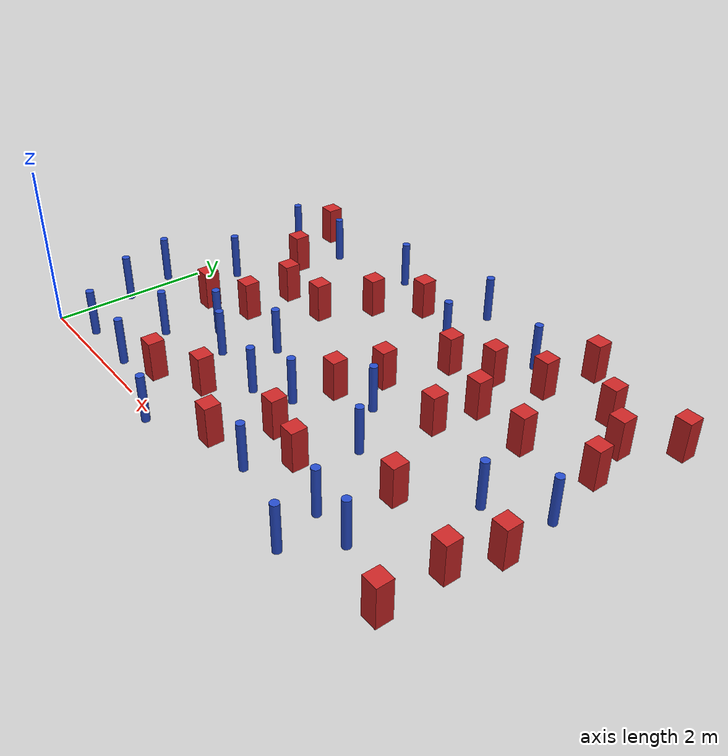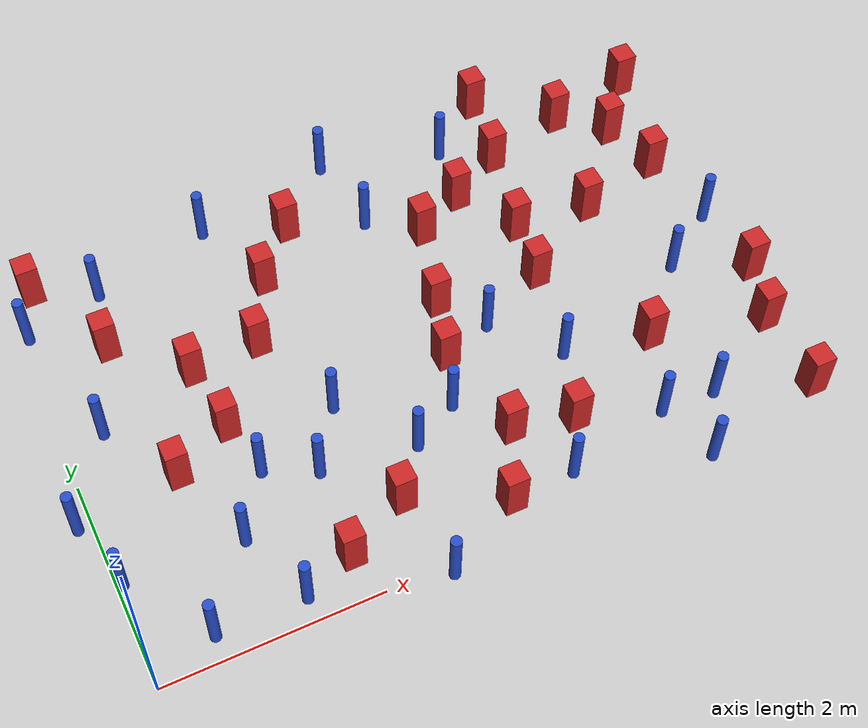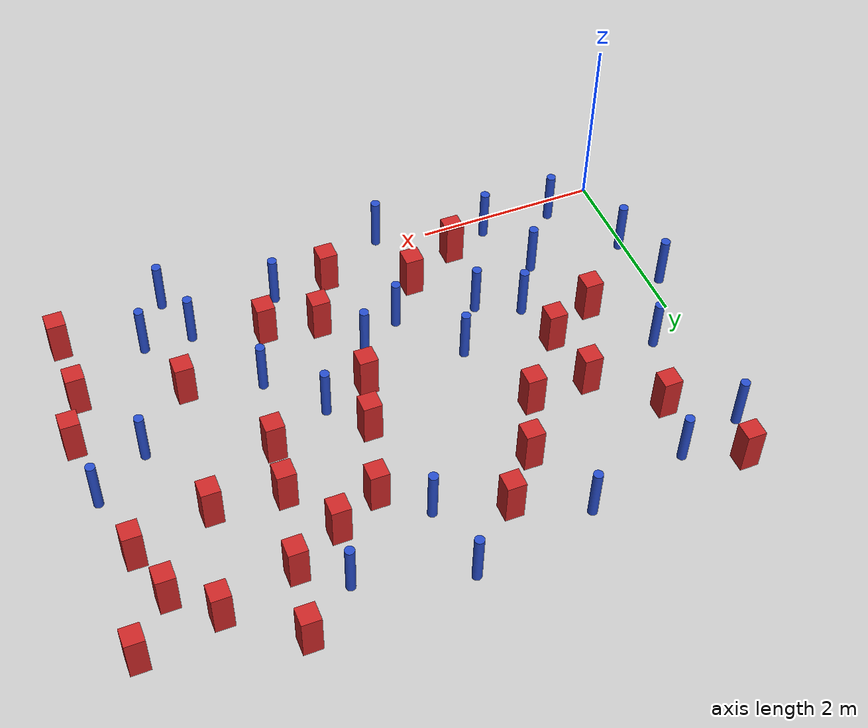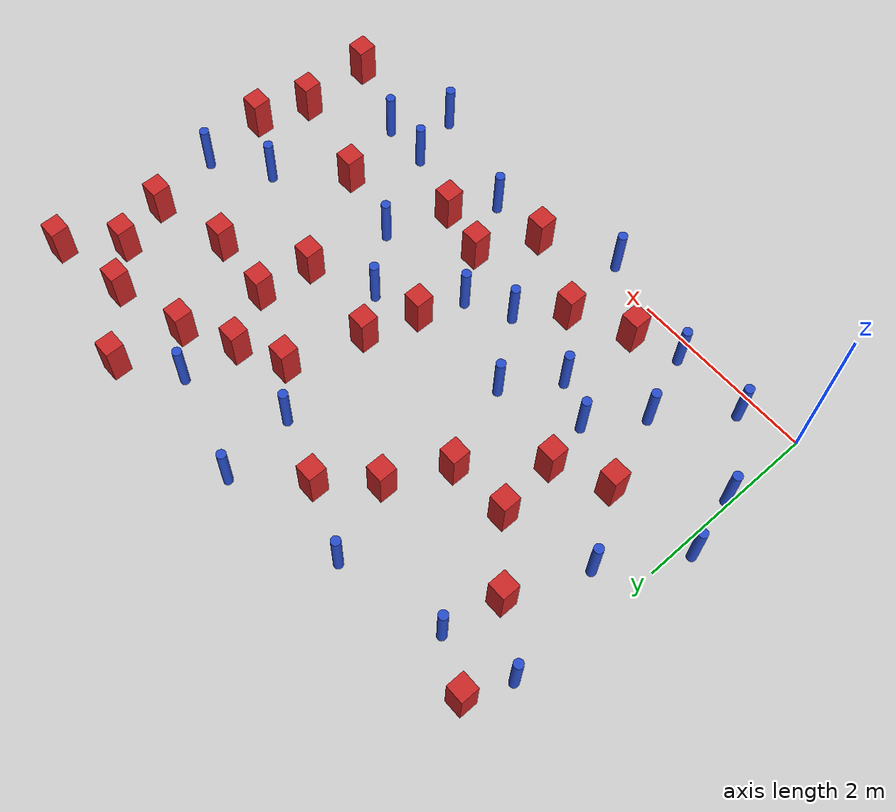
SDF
<sdf version="1.6">
 <model name="dense_54">
  <model name="square_post_obstacle2">
   <static>true</static>
   <pose>3.42907866746 1.85608255959 1.91545236811e-07 -7.35059704564e-06 1.12565212e-07 2.39332434364e-05</pose>
   <link name="link">
    <pose>0 0 0.25 0 -0 0</pose>
    <inertial>
     <mass>100</mass>
     <inertia>
      <ixx>0.166667</ixx>
      <ixy>0</ixy>
      <ixz>0</ixz>
      <iyy>0.166667</iyy>
      <iyz>0</iyz>
      <izz>0.166667</izz>
     </inertia>
    </inertial>
    <collision name="collision"><geometry><box><size>.2 .2 .5</size></box></geometry></collision>
    <visual name="visual">
     <geometry><box><size>.2 .2 .5</size></box></geometry>
     <material>
      <script><name>Gazebo/Red</name><uri>file://media/materials/scripts/gazebo.material</uri></script>
     </material>
    </visual>
   </link>
  </model>
  <model name="pole_obstacle1">
   <static>true</static>
   <pose>1.48350776402 1.47035718474 7.38925637345e-09 -8.471706928e-08 1.24976765079e-08 -1.74513093017e-07</pose>
   <link name="link">
    <pose>0 0 0.3 0 -0 0</pose>
    <inertial>
     <mass>1</mass>
     <inertia><ixx>0.145833</ixx><ixy>0</ixy><ixz>0</ixz><iyy>0.145833</iyy><iyz>0</iyz><izz>0.125</izz></inertia>
    </inertial>
    <collision name="collision">
     <geometry><cylinder><radius>0.05</radius><length>.6</length></cylinder></geometry>
    </collision>
    <visual name="visual">
     <geometry><cylinder><radius>0.05</radius><length>.6</length></cylinder></geometry>
     <material>
      <script><name>Gazebo/Blue</name><uri>file://media/materials/scripts/gazebo.material</uri></script>
     </material>
    </visual>
   </link>
  </model>
  <model name="square_post_obstacle3">
   <static>true</static>
   <pose>3.30021493687 0.299328565392 1.91545236811e-07 -7.35059704564e-06 1.12565212e-07 2.39332434364e-05</pose>
   <link name="link">
    <pose>0 0 0.25 0 -0 0</pose>
    <inertial>
     <mass>100</mass>
     <inertia>
      <ixx>0.166667</ixx>
      <ixy>0</ixy>
      <ixz>0</ixz>
      <iyy>0.166667</iyy>
      <iyz>0</iyz>
      <izz>0.166667</izz>
     </inertia>
    </inertial>
    <collision name="collision"><geometry><box><size>.2 .2 .5</size></box></geometry></collision>
    <visual name="visual">
     <geometry><box><size>.2 .2 .5</size></box></geometry>
     <material>
      <script><name>Gazebo/Red</name><uri>file://media/materials/scripts/gazebo.material</uri></script>
     </material>
    </visual>
   </link>
  </model>
  <model name="square_post_obstacle26">
   <static>true</static>
   <pose>6.25587977387 0.218752010429 1.91545236811e-07 -7.35059704564e-06 1.12565212e-07 2.39332434364e-05</pose>
   <link name="link">
    <pose>0 0 0.25 0 -0 0</pose>
    <inertial>
     <mass>100</mass>
     <inertia>
      <ixx>0.166667</ixx>
      <ixy>0</ixy>
      <ixz>0</ixz>
      <iyy>0.166667</iyy>
      <iyz>0</iyz>
      <izz>0.166667</izz>
     </inertia>
    </inertial>
    <collision name="collision"><geometry><box><size>.2 .2 .5</size></box></geometry></collision>
    <visual name="visual">
     <geometry><box><size>.2 .2 .5</size></box></geometry>
     <material>
      <script><name>Gazebo/Red</name><uri>file://media/materials/scripts/gazebo.material</uri></script>
     </material>
    </visual>
   </link>
  </model>
  <model name="square_post_obstacle27">
   <static>true</static>
   <pose>4.17155937596 0.791975838334 1.91545236811e-07 -7.35059704564e-06 1.12565212e-07 2.39332434364e-05</pose>
   <link name="link">
    <pose>0 0 0.25 0 -0 0</pose>
    <inertial>
     <mass>100</mass>
     <inertia>
      <ixx>0.166667</ixx>
      <ixy>0</ixy>
      <ixz>0</ixz>
      <iyy>0.166667</iyy>
      <iyz>0</iyz>
      <izz>0.166667</izz>
     </inertia>
    </inertial>
    <collision name="collision"><geometry><box><size>.2 .2 .5</size></box></geometry></collision>
    <visual name="visual">
     <geometry><box><size>.2 .2 .5</size></box></geometry>
     <material>
      <script><name>Gazebo/Red</name><uri>file://media/materials/scripts/gazebo.material</uri></script>
     </material>
    </visual>
   </link>
  </model>
  <model name="square_post_obstacle31">
   <static>true</static>
   <pose>2.26156121374 3.33045627502 1.91545236811e-07 -7.35059704564e-06 1.12565212e-07 2.39332434364e-05</pose>
   <link name="link">
    <pose>0 0 0.25 0 -0 0</pose>
    <inertial>
     <mass>100</mass>
     <inertia>
      <ixx>0.166667</ixx>
      <ixy>0</ixy>
      <ixz>0</ixz>
      <iyy>0.166667</iyy>
      <iyz>0</iyz>
      <izz>0.166667</izz>
     </inertia>
    </inertial>
    <collision name="collision"><geometry><box><size>.2 .2 .5</size></box></geometry></collision>
    <visual name="visual">
     <geometry><box><size>.2 .2 .5</size></box></geometry>
     <material>
      <script><name>Gazebo/Red</name><uri>file://media/materials/scripts/gazebo.material</uri></script>
     </material>
    </visual>
   </link>
  </model>
  <model name="pole_obstacle24">
   <static>true</static>
   <pose>2.56661953469 -0.102240468789 7.38925637345e-09 -8.471706928e-08 1.24976765088e-08 -1.74513093017e-07</pose>
   <link name="link">
    <pose>0 0 0.3 0 -0 0</pose>
    <inertial>
     <mass>1</mass>
     <inertia><ixx>0.145833</ixx><ixy>0</ixy><ixz>0</ixz><iyy>0.145833</iyy><iyz>0</iyz><izz>0.125</izz></inertia>
    </inertial>
    <collision name="collision">
     <geometry><cylinder><radius>0.05</radius><length>.6</length></cylinder></geometry>
    </collision>
    <visual name="visual">
     <geometry><cylinder><radius>0.05</radius><length>.6</length></cylinder></geometry>
     <material>
      <script><name>Gazebo/Blue</name><uri>file://media/materials/scripts/gazebo.material</uri></script>
     </material>
    </visual>
   </link>
  </model>
  <model name="pole_obstacle26">
   <static>true</static>
   <pose>0.0470481594055 0.967215717514 7.38925637345e-09 -8.47170692798e-08 1.24976765043e-08 -1.74513093018e-07</pose>
   <link name="link">
    <pose>0 0 0.3 0 -0 0</pose>
    <inertial>
     <mass>1</mass>
     <inertia><ixx>0.145833</ixx><ixy>0</ixy><ixz>0</ixz><iyy>0.145833</iyy><iyz>0</iyz><izz>0.125</izz></inertia>
    </inertial>
    <collision name="collision">
     <geometry><cylinder><radius>0.05</radius><length>.6</length></cylinder></geometry>
    </collision>
    <visual name="visual">
     <geometry><cylinder><radius>0.05</radius><length>.6</length></cylinder></geometry>
     <material>
      <script><name>Gazebo/Blue</name><uri>file://media/materials/scripts/gazebo.material</uri></script>
     </material>
    </visual>
   </link>
  </model>
  <model name="square_post_obstacle34">
   <static>true</static>
   <pose>3.60558968587 2.42284422886 1.91545236811e-07 -7.35059704564e-06 1.12565212e-07 2.39332434364e-05</pose>
   <link name="link">
    <pose>0 0 0.25 0 -0 0</pose>
    <inertial>
     <mass>100</mass>
     <inertia>
      <ixx>0.166667</ixx>
      <ixy>0</ixy>
      <ixz>0</ixz>
      <iyy>0.166667</iyy>
      <iyz>0</iyz>
      <izz>0.166667</izz>
     </inertia>
    </inertial>
    <collision name="collision"><geometry><box><size>.2 .2 .5</size></box></geometry></collision>
    <visual name="visual">
     <geometry><box><size>.2 .2 .5</size></box></geometry>
     <material>
      <script><name>Gazebo/Red</name><uri>file://media/materials/scripts/gazebo.material</uri></script>
     </material>
    </visual>
   </link>
  </model>
  <model name="square_post_obstacle47">
   <static>true</static>
   <pose>5.63885271513 3.95635815245 1.91545236811e-07 -7.35059704564e-06 1.12565212e-07 2.39332434364e-05</pose>
   <link name="link">
    <pose>0 0 0.25 0 -0 0</pose>
    <inertial>
     <mass>100</mass>
     <inertia>
      <ixx>0.166667</ixx>
      <ixy>0</ixy>
      <ixz>0</ixz>
      <iyy>0.166667</iyy>
      <iyz>0</iyz>
      <izz>0.166667</izz>
     </inertia>
    </inertial>
    <collision name="collision"><geometry><box><size>.2 .2 .5</size></box></geometry></collision>
    <visual name="visual">
     <geometry><box><size>.2 .2 .5</size></box></geometry>
     <material>
      <script><name>Gazebo/Red</name><uri>file://media/materials/scripts/gazebo.material</uri></script>
     </material>
    </visual>
   </link>
  </model>
  <model name="square_post_obstacle50">
   <static>true</static>
   <pose>1.30148058443 2.66913933587 1.91545236811e-07 -7.35059704564e-06 1.12565212e-07 2.39332434364e-05</pose>
   <link name="link">
    <pose>0 0 0.25 0 -0 0</pose>
    <inertial>
     <mass>100</mass>
     <inertia>
      <ixx>0.166667</ixx>
      <ixy>0</ixy>
      <ixz>0</ixz>
      <iyy>0.166667</iyy>
      <iyz>0</iyz>
      <izz>0.166667</izz>
     </inertia>
    </inertial>
    <collision name="collision"><geometry><box><size>.2 .2 .5</size></box></geometry></collision>
    <visual name="visual">
     <geometry><box><size>.2 .2 .5</size></box></geometry>
     <material>
      <script><name>Gazebo/Red</name><uri>file://media/materials/scripts/gazebo.material</uri></script>
     </material>
    </visual>
   </link>
  </model>
  <model name="pole_obstacle52">
   <static>true</static>
   <pose>4.42322133173 4.05325340769 7.38925637345e-09 -8.47170692796e-08 1.24976764786e-08 -1.74513093032e-07</pose>
   <link name="link">
    <pose>0 0 0.3 0 -0 0</pose>
    <inertial>
     <mass>1</mass>
     <inertia><ixx>0.145833</ixx><ixy>0</ixy><ixz>0</ixz><iyy>0.145833</iyy><iyz>0</iyz><izz>0.125</izz></inertia>
    </inertial>
    <collision name="collision">
     <geometry><cylinder><radius>0.05</radius><length>.6</length></cylinder></geometry>
    </collision>
    <visual name="visual">
     <geometry><cylinder><radius>0.05</radius><length>.6</length></cylinder></geometry>
     <material>
      <script><name>Gazebo/Blue</name><uri>file://media/materials/scripts/gazebo.material</uri></script>
     </material>
    </visual>
   </link>
  </model>
  <model name="square_post_obstacle59">
   <static>true</static>
   <pose>5.39067442981 2.82921084237 1.91545236811e-07 -7.35059704564e-06 1.12565212e-07 2.39332434364e-05</pose>
   <link name="link">
    <pose>0 0 0.25 0 -0 0</pose>
    <inertial>
     <mass>100</mass>
     <inertia>
      <ixx>0.166667</ixx>
      <ixy>0</ixy>
      <ixz>0</ixz>
      <iyy>0.166667</iyy>
      <iyz>0</iyz>
      <izz>0.166667</izz>
     </inertia>
    </inertial>
    <collision name="collision"><geometry><box><size>.2 .2 .5</size></box></geometry></collision>
    <visual name="visual">
     <geometry><box><size>.2 .2 .5</size></box></geometry>
     <material>
      <script><name>Gazebo/Red</name><uri>file://media/materials/scripts/gazebo.material</uri></script>
     </material>
    </visual>
   </link>
  </model>
  <model name="square_post_obstacle60">
   <static>true</static>
   <pose>0.823319216897 1.73336303704 1.91545236811e-07 -7.35059704564e-06 1.12565212e-07 2.39332434364e-05</pose>
   <link name="link">
    <pose>0 0 0.25 0 -0 0</pose>
    <inertial>
     <mass>100</mass>
     <inertia>
      <ixx>0.166667</ixx>
      <ixy>0</ixy>
      <ixz>0</ixz>
      <iyy>0.166667</iyy>
      <iyz>0</iyz>
      <izz>0.166667</izz>
     </inertia>
    </inertial>
    <collision name="collision"><geometry><box><size>.2 .2 .5</size></box></geometry></collision>
    <visual name="visual">
     <geometry><box><size>.2 .2 .5</size></box></geometry>
     <material>
      <script><name>Gazebo/Red</name><uri>file://media/materials/scripts/gazebo.material</uri></script>
     </material>
    </visual>
   </link>
  </model>
  <model name="square_post_obstacle64">
   <static>true</static>
   <pose>5.1945055967 1.27014534133 1.91545236811e-07 -7.35059704564e-06 1.12565212e-07 2.39332434364e-05</pose>
   <link name="link">
    <pose>0 0 0.25 0 -0 0</pose>
    <inertial>
     <mass>100</mass>
     <inertia>
      <ixx>0.166667</ixx>
      <ixy>0</ixy>
      <ixz>0</ixz>
      <iyy>0.166667</iyy>
      <iyz>0</iyz>
      <izz>0.166667</izz>
     </inertia>
    </inertial>
    <collision name="collision"><geometry><box><size>.2 .2 .5</size></box></geometry></collision>
    <visual name="visual">
     <geometry><box><size>.2 .2 .5</size></box></geometry>
     <material>
      <script><name>Gazebo/Red</name><uri>file://media/materials/scripts/gazebo.material</uri></script>
     </material>
    </visual>
   </link>
  </model>
  <model name="square_post_obstacle69">
   <static>true</static>
   <pose>1.37323671497 1.99977081046 1.91545236811e-07 -7.35059704564e-06 1.12565212e-07 2.39332434364e-05</pose>
   <link name="link">
    <pose>0 0 0.25 0 -0 0</pose>
    <inertial>
     <mass>100</mass>
     <inertia>
      <ixx>0.166667</ixx>
      <ixy>0</ixy>
      <ixz>0</ixz>
      <iyy>0.166667</iyy>
      <iyz>0</iyz>
      <izz>0.166667</izz>
     </inertia>
    </inertial>
    <collision name="collision"><geometry><box><size>.2 .2 .5</size></box></geometry></collision>
    <visual name="visual">
     <geometry><box><size>.2 .2 .5</size></box></geometry>
     <material>
      <script><name>Gazebo/Red</name><uri>file://media/materials/scripts/gazebo.material</uri></script>
     </material>
    </visual>
   </link>
  </model>
  <model name="pole_obstacle69">
   <static>true</static>
   <pose>4.9115432792 0.536855201378 7.38925637345e-09 -8.471706928e-08 1.24976765164e-08 -1.74513093012e-07</pose>
   <link name="link">
    <pose>0 0 0.3 0 -0 0</pose>
    <inertial>
     <mass>1</mass>
     <inertia><ixx>0.145833</ixx><ixy>0</ixy><ixz>0</ixz><iyy>0.145833</iyy><iyz>0</iyz><izz>0.125</izz></inertia>
    </inertial>
    <collision name="collision">
     <geometry><cylinder><radius>0.05</radius><length>.6</length></cylinder></geometry>
    </collision>
    <visual name="visual">
     <geometry><cylinder><radius>0.05</radius><length>.6</length></cylinder></geometry>
     <material>
      <script><name>Gazebo/Blue</name><uri>file://media/materials/scripts/gazebo.material</uri></script>
     </material>
    </visual>
   </link>
  </model>
  <model name="pole_obstacle70">
   <static>true</static>
   <pose>0.57574895433 0.223776861906 7.38925637345e-09 -8.471706928e-08 1.24976765073e-08 -1.74513093016e-07</pose>
   <link name="link">
    <pose>0 0 0.3 0 -0 0</pose>
    <inertial>
     <mass>1</mass>
     <inertia><ixx>0.145833</ixx><ixy>0</ixy><ixz>0</ixz><iyy>0.145833</iyy><iyz>0</iyz><izz>0.125</izz></inertia>
    </inertial>
    <collision name="collision">
     <geometry><cylinder><radius>0.05</radius><length>.6</length></cylinder></geometry>
    </collision>
    <visual name="visual">
     <geometry><cylinder><radius>0.05</radius><length>.6</length></cylinder></geometry>
     <material>
      <script><name>Gazebo/Blue</name><uri>file://media/materials/scripts/gazebo.material</uri></script>
     </material>
    </visual>
   </link>
  </model>
  <model name="pole_obstacle73">
   <static>true</static>
   <pose>3.28883328307 4.37907614086 7.38925637345e-09 -8.47170692798e-08 1.24976765033e-08 -1.74513093019e-07</pose>
   <link name="link">
    <pose>0 0 0.3 0 -0 0</pose>
    <inertial>
     <mass>1</mass>
     <inertia><ixx>0.145833</ixx><ixy>0</ixy><ixz>0</ixz><iyy>0.145833</iyy><iyz>0</iyz><izz>0.125</izz></inertia>
    </inertial>
    <collision name="collision">
     <geometry><cylinder><radius>0.05</radius><length>.6</length></cylinder></geometry>
    </collision>
    <visual name="visual">
     <geometry><cylinder><radius>0.05</radius><length>.6</length></cylinder></geometry>
     <material>
      <script><name>Gazebo/Blue</name><uri>file://media/materials/scripts/gazebo.material</uri></script>
     </material>
    </visual>
   </link>
  </model>
  <model name="pole_obstacle83">
   <static>true</static>
   <pose>5.79301298365 1.88010205711 7.38925637345e-09 -8.471706928e-08 1.24976765134e-08 -1.74513093015e-07</pose>
   <link name="link">
    <pose>0 0 0.3 0 -0 0</pose>
    <inertial>
     <mass>1</mass>
     <inertia><ixx>0.145833</ixx><ixy>0</ixy><ixz>0</ixz><iyy>0.145833</iyy><iyz>0</iyz><izz>0.125</izz></inertia>
    </inertial>
    <collision name="collision">
     <geometry><cylinder><radius>0.05</radius><length>.6</length></cylinder></geometry>
    </collision>
    <visual name="visual">
     <geometry><cylinder><radius>0.05</radius><length>.6</length></cylinder></geometry>
     <material>
      <script><name>Gazebo/Blue</name><uri>file://media/materials/scripts/gazebo.material</uri></script>
     </material>
    </visual>
   </link>
  </model>
  <model name="square_post_obstacle81">
   <static>true</static>
   <pose>4.32251659987 3.46913993744 1.91545236811e-07 -7.35059704564e-06 1.12565212e-07 2.39332434364e-05</pose>
   <link name="link">
    <pose>0 0 0.25 0 -0 0</pose>
    <inertial>
     <mass>100</mass>
     <inertia>
      <ixx>0.166667</ixx>
      <ixy>0</ixy>
      <ixz>0</ixz>
      <iyy>0.166667</iyy>
      <iyz>0</iyz>
      <izz>0.166667</izz>
     </inertia>
    </inertial>
    <collision name="collision"><geometry><box><size>.2 .2 .5</size></box></geometry></collision>
    <visual name="visual">
     <geometry><box><size>.2 .2 .5</size></box></geometry>
     <material>
      <script><name>Gazebo/Red</name><uri>file://media/materials/scripts/gazebo.material</uri></script>
     </material>
    </visual>
   </link>
  </model>
  <model name="pole_obstacle91">
   <static>true</static>
   <pose>-0.125707725286 1.60909884933 7.38925637345e-09 -8.47170692799e-08 1.24976765103e-08 -1.74513093015e-07</pose>
   <link name="link">
    <pose>0 0 0.3 0 -0 0</pose>
    <inertial>
     <mass>1</mass>
     <inertia><ixx>0.145833</ixx><ixy>0</ixy><ixz>0</ixz><iyy>0.145833</iyy><iyz>0</iyz><izz>0.125</izz></inertia>
    </inertial>
    <collision name="collision">
     <geometry><cylinder><radius>0.05</radius><length>.6</length></cylinder></geometry>
    </collision>
    <visual name="visual">
     <geometry><cylinder><radius>0.05</radius><length>.6</length></cylinder></geometry>
     <material>
      <script><name>Gazebo/Blue</name><uri>file://media/materials/scripts/gazebo.material</uri></script>
     </material>
    </visual>
   </link>
  </model>
  <model name="square_post_obstacle84">
   <static>true</static>
   <pose>4.97425124544 4.47475148719 1.91545236811e-07 -7.35059704564e-06 1.12565212e-07 2.39332434364e-05</pose>
   <link name="link">
    <pose>0 0 0.25 0 -0 0</pose>
    <inertial>
     <mass>100</mass>
     <inertia>
      <ixx>0.166667</ixx>
      <ixy>0</ixy>
      <ixz>0</ixz>
      <iyy>0.166667</iyy>
      <iyz>0</iyz>
      <izz>0.166667</izz>
     </inertia>
    </inertial>
    <collision name="collision"><geometry><box><size>.2 .2 .5</size></box></geometry></collision>
    <visual name="visual">
     <geometry><box><size>.2 .2 .5</size></box></geometry>
     <material>
      <script><name>Gazebo/Red</name><uri>file://media/materials/scripts/gazebo.material</uri></script>
     </material>
    </visual>
   </link>
  </model>
  <model name="square_post_obstacle85">
   <static>true</static>
   <pose>4.84624368069 3.7546573629 1.91545236811e-07 -7.35059704564e-06 1.12565212e-07 2.39332434364e-05</pose>
   <link name="link">
    <pose>0 0 0.25 0 -0 0</pose>
    <inertial>
     <mass>100</mass>
     <inertia>
      <ixx>0.166667</ixx>
      <ixy>0</ixy>
      <ixz>0</ixz>
      <iyy>0.166667</iyy>
      <iyz>0</iyz>
      <izz>0.166667</izz>
     </inertia>
    </inertial>
    <collision name="collision"><geometry><box><size>.2 .2 .5</size></box></geometry></collision>
    <visual name="visual">
     <geometry><box><size>.2 .2 .5</size></box></geometry>
     <material>
      <script><name>Gazebo/Red</name><uri>file://media/materials/scripts/gazebo.material</uri></script>
     </material>
    </visual>
   </link>
  </model>
  <model name="pole_obstacle100">
   <static>true</static>
   <pose>6.37108561402 2.2789085057 7.38925637345e-09 -8.47170692798e-08 1.24976764937e-08 -1.74513093023e-07</pose>
   <link name="link">
    <pose>0 0 0.3 0 -0 0</pose>
    <inertial>
     <mass>1</mass>
     <inertia><ixx>0.145833</ixx><ixy>0</ixy><ixz>0</ixz><iyy>0.145833</iyy><iyz>0</iyz><izz>0.125</izz></inertia>
    </inertial>
    <collision name="collision">
     <geometry><cylinder><radius>0.05</radius><length>.6</length></cylinder></geometry>
    </collision>
    <visual name="visual">
     <geometry><cylinder><radius>0.05</radius><length>.6</length></cylinder></geometry>
     <material>
      <script><name>Gazebo/Blue</name><uri>file://media/materials/scripts/gazebo.material</uri></script>
     </material>
    </visual>
   </link>
  </model>
  <model name="square_post_obstacle92">
   <static>true</static>
   <pose>0.70456642349 3.23890737635 1.91545236811e-07 -7.35059704564e-06 1.12565212e-07 2.39332434364e-05</pose>
   <link name="link">
    <pose>0 0 0.25 0 -0 0</pose>
    <inertial>
     <mass>100</mass>
     <inertia>
      <ixx>0.166667</ixx>
      <ixy>0</ixy>
      <ixz>0</ixz>
      <iyy>0.166667</iyy>
      <iyz>0</iyz>
      <izz>0.166667</izz>
     </inertia>
    </inertial>
    <collision name="collision"><geometry><box><size>.2 .2 .5</size></box></geometry></collision>
    <visual name="visual">
     <geometry><box><size>.2 .2 .5</size></box></geometry>
     <material>
      <script><name>Gazebo/Red</name><uri>file://media/materials/scripts/gazebo.material</uri></script>
     </material>
    </visual>
   </link>
  </model>
  <model name="square_post_obstacle95">
   <static>true</static>
   <pose>6.24750688338 0.999710594308 1.91545236811e-07 -7.35059704564e-06 1.12565212e-07 2.39332434364e-05</pose>
   <link name="link">
    <pose>0 0 0.25 0 -0 0</pose>
    <inertial>
     <mass>100</mass>
     <inertia>
      <ixx>0.166667</ixx>
      <ixy>0</ixy>
      <ixz>0</ixz>
      <iyy>0.166667</iyy>
      <iyz>0</iyz>
      <izz>0.166667</izz>
     </inertia>
    </inertial>
    <collision name="collision"><geometry><box><size>.2 .2 .5</size></box></geometry></collision>
    <visual name="visual">
     <geometry><box><size>.2 .2 .5</size></box></geometry>
     <material>
      <script><name>Gazebo/Red</name><uri>file://media/materials/scripts/gazebo.material</uri></script>
     </material>
    </visual>
   </link>
  </model>
  <model name="square_post_obstacle97">
   <static>true</static>
   <pose>6.47033900189 4.10918136226 1.91545236811e-07 -7.35059704564e-06 1.12565212e-07 2.39332434364e-05</pose>
   <link name="link">
    <pose>0 0 0.25 0 -0 0</pose>
    <inertial>
     <mass>100</mass>
     <inertia>
      <ixx>0.166667</ixx>
      <ixy>0</ixy>
      <ixz>0</ixz>
      <iyy>0.166667</iyy>
      <iyz>0</iyz>
      <izz>0.166667</izz>
     </inertia>
    </inertial>
    <collision name="collision"><geometry><box><size>.2 .2 .5</size></box></geometry></collision>
    <visual name="visual">
     <geometry><box><size>.2 .2 .5</size></box></geometry>
     <material>
      <script><name>Gazebo/Red</name><uri>file://media/materials/scripts/gazebo.material</uri></script>
     </material>
    </visual>
   </link>
  </model>
  <model name="square_post_obstacle102">
   <static>true</static>
   <pose>3.60766624876 0.924212082543 1.91545236811e-07 -7.35059704564e-06 1.12565212e-07 2.39332434364e-05</pose>
   <link name="link">
    <pose>0 0 0.25 0 -0 0</pose>
    <inertial>
     <mass>100</mass>
     <inertia>
      <ixx>0.166667</ixx>
      <ixy>0</ixy>
      <ixz>0</ixz>
      <iyy>0.166667</iyy>
      <iyz>0</iyz>
      <izz>0.166667</izz>
     </inertia>
    </inertial>
    <collision name="collision"><geometry><box><size>.2 .2 .5</size></box></geometry></collision>
    <visual name="visual">
     <geometry><box><size>.2 .2 .5</size></box></geometry>
     <material>
      <script><name>Gazebo/Red</name><uri>file://media/materials/scripts/gazebo.material</uri></script>
     </material>
    </visual>
   </link>
  </model>
  <model name="pole_obstacle119">
   <static>true</static>
   <pose>0.827692453384 3.84690031925 7.38925637345e-09 -8.47170692799e-08 1.2497676509e-08 -1.74513093016e-07</pose>
   <link name="link">
    <pose>0 0 0.3 0 -0 0</pose>
    <inertial>
     <mass>1</mass>
     <inertia><ixx>0.145833</ixx><ixy>0</ixy><ixz>0</ixz><iyy>0.145833</iyy><iyz>0</iyz><izz>0.125</izz></inertia>
    </inertial>
    <collision name="collision">
     <geometry><cylinder><radius>0.05</radius><length>.6</length></cylinder></geometry>
    </collision>
    <visual name="visual">
     <geometry><cylinder><radius>0.05</radius><length>.6</length></cylinder></geometry>
     <material>
      <script><name>Gazebo/Blue</name><uri>file://media/materials/scripts/gazebo.material</uri></script>
     </material>
    </visual>
   </link>
  </model>
  <model name="pole_obstacle121">
   <static>true</static>
   <pose>2.8141669642 1.13267502777 7.38925637345e-09 -8.471706928e-08 1.24976765152e-08 -1.74513093012e-07</pose>
   <link name="link">
    <pose>0 0 0.3 0 -0 0</pose>
    <inertial>
     <mass>1</mass>
     <inertia><ixx>0.145833</ixx><ixy>0</ixy><ixz>0</ixz><iyy>0.145833</iyy><iyz>0</iyz><izz>0.125</izz></inertia>
    </inertial>
    <collision name="collision">
     <geometry><cylinder><radius>0.05</radius><length>.6</length></cylinder></geometry>
    </collision>
    <visual name="visual">
     <geometry><cylinder><radius>0.05</radius><length>.6</length></cylinder></geometry>
     <material>
      <script><name>Gazebo/Blue</name><uri>file://media/materials/scripts/gazebo.material</uri></script>
     </material>
    </visual>
   </link>
  </model>
  <model name="pole_obstacle122">
   <static>true</static>
   <pose>3.92432425905 2.00981238125 7.38925637345e-09 -8.47170692799e-08 1.24976765087e-08 -1.74513093015e-07</pose>
   <link name="link">
    <pose>0 0 0.3 0 -0 0</pose>
    <inertial>
     <mass>1</mass>
     <inertia><ixx>0.145833</ixx><ixy>0</ixy><ixz>0</ixz><iyy>0.145833</iyy><iyz>0</iyz><izz>0.125</izz></inertia>
    </inertial>
    <collision name="collision">
     <geometry><cylinder><radius>0.05</radius><length>.6</length></cylinder></geometry>
    </collision>
    <visual name="visual">
     <geometry><cylinder><radius>0.05</radius><length>.6</length></cylinder></geometry>
     <material>
      <script><name>Gazebo/Blue</name><uri>file://media/materials/scripts/gazebo.material</uri></script>
     </material>
    </visual>
   </link>
  </model>
  <model name="pole_obstacle124">
   <static>true</static>
   <pose>5.42598654304 0.512718496909 7.38925637345e-09 -8.471706928e-08 1.24976765164e-08 -1.74513093012e-07</pose>
   <link name="link">
    <pose>0 0 0.3 0 -0 0</pose>
    <inertial>
     <mass>1</mass>
     <inertia><ixx>0.145833</ixx><ixy>0</ixy><ixz>0</ixz><iyy>0.145833</iyy><iyz>0</iyz><izz>0.125</izz></inertia>
    </inertial>
    <collision name="collision">
     <geometry><cylinder><radius>0.05</radius><length>.6</length></cylinder></geometry>
    </collision>
    <visual name="visual">
     <geometry><cylinder><radius>0.05</radius><length>.6</length></cylinder></geometry>
     <material>
      <script><name>Gazebo/Blue</name><uri>file://media/materials/scripts/gazebo.material</uri></script>
     </material>
    </visual>
   </link>
  </model>
  <model name="pole_obstacle137">
   <static>true</static>
   <pose>0.0940525441943 3.64748490505 7.38925637345e-09 -8.47170692799e-08 1.24976765021e-08 -1.74513093019e-07</pose>
   <link name="link">
    <pose>0 0 0.3 0 -0 0</pose>
    <inertial>
     <mass>1</mass>
     <inertia><ixx>0.145833</ixx><ixy>0</ixy><ixz>0</ixz><iyy>0.145833</iyy><iyz>0</iyz><izz>0.125</izz></inertia>
    </inertial>
    <collision name="collision">
     <geometry><cylinder><radius>0.05</radius><length>.6</length></cylinder></geometry>
    </collision>
    <visual name="visual">
     <geometry><cylinder><radius>0.05</radius><length>.6</length></cylinder></geometry>
     <material>
      <script><name>Gazebo/Blue</name><uri>file://media/materials/scripts/gazebo.material</uri></script>
     </material>
    </visual>
   </link>
  </model>
  <model name="square_post_obstacle123">
   <static>true</static>
   <pose>6.4278260094 1.55646025615 1.91545236811e-07 -7.35059704564e-06 1.12565212e-07 2.39332434364e-05</pose>
   <link name="link">
    <pose>0 0 0.25 0 -0 0</pose>
    <inertial>
     <mass>100</mass>
     <inertia>
      <ixx>0.166667</ixx>
      <ixy>0</ixy>
      <ixz>0</ixz>
      <iyy>0.166667</iyy>
      <iyz>0</iyz>
      <izz>0.166667</izz>
     </inertia>
    </inertial>
    <collision name="collision"><geometry><box><size>.2 .2 .5</size></box></geometry></collision>
    <visual name="visual">
     <geometry><box><size>.2 .2 .5</size></box></geometry>
     <material>
      <script><name>Gazebo/Red</name><uri>file://media/materials/scripts/gazebo.material</uri></script>
     </material>
    </visual>
   </link>
  </model>
  <model name="pole_obstacle141">
   <static>true</static>
   <pose>0.378907875785 2.41160785974 7.38925637345e-09 -8.471706928e-08 1.24976765084e-08 -1.74513093017e-07</pose>
   <link name="link">
    <pose>0 0 0.3 0 -0 0</pose>
    <inertial>
     <mass>1</mass>
     <inertia><ixx>0.145833</ixx><ixy>0</ixy><ixz>0</ixz><iyy>0.145833</iyy><iyz>0</iyz><izz>0.125</izz></inertia>
    </inertial>
    <collision name="collision">
     <geometry><cylinder><radius>0.05</radius><length>.6</length></cylinder></geometry>
    </collision>
    <visual name="visual">
     <geometry><cylinder><radius>0.05</radius><length>.6</length></cylinder></geometry>
     <material>
      <script><name>Gazebo/Blue</name><uri>file://media/materials/scripts/gazebo.material</uri></script>
     </material>
    </visual>
   </link>
  </model>
  <model name="square_post_obstacle128">
   <static>true</static>
   <pose>6.04632629917 3.5933880203 1.91545236811e-07 -7.35059704564e-06 1.12565212e-07 2.39332434364e-05</pose>
   <link name="link">
    <pose>0 0 0.25 0 -0 0</pose>
    <inertial>
     <mass>100</mass>
     <inertia>
      <ixx>0.166667</ixx>
      <ixy>0</ixy>
      <ixz>0</ixz>
      <iyy>0.166667</iyy>
      <iyz>0</iyz>
      <izz>0.166667</izz>
     </inertia>
    </inertial>
    <collision name="collision"><geometry><box><size>.2 .2 .5</size></box></geometry></collision>
    <visual name="visual">
     <geometry><box><size>.2 .2 .5</size></box></geometry>
     <material>
      <script><name>Gazebo/Red</name><uri>file://media/materials/scripts/gazebo.material</uri></script>
     </material>
    </visual>
   </link>
  </model>
  <model name="square_post_obstacle134">
   <static>true</static>
   <pose>1.94886774105 2.70409674143 1.91545236811e-07 -7.35059704564e-06 1.12565212e-07 2.39332434364e-05</pose>
   <link name="link">
    <pose>0 0 0.25 0 -0 0</pose>
    <inertial>
     <mass>100</mass>
     <inertia>
      <ixx>0.166667</ixx>
      <ixy>0</ixy>
      <ixz>0</ixz>
      <iyy>0.166667</iyy>
      <iyz>0</iyz>
      <izz>0.166667</izz>
     </inertia>
    </inertial>
    <collision name="collision"><geometry><box><size>.2 .2 .5</size></box></geometry></collision>
    <visual name="visual">
     <geometry><box><size>.2 .2 .5</size></box></geometry>
     <material>
      <script><name>Gazebo/Red</name><uri>file://media/materials/scripts/gazebo.material</uri></script>
     </material>
    </visual>
   </link>
  </model>
  <model name="pole_obstacle149">
   <static>true</static>
   <pose>4.41274179749 1.44270590316 7.38925637345e-09 -8.471706928e-08 1.24976765134e-08 -1.74513093015e-07</pose>
   <link name="link">
    <pose>0 0 0.3 0 -0 0</pose>
    <inertial>
     <mass>1</mass>
     <inertia><ixx>0.145833</ixx><ixy>0</ixy><ixz>0</ixz><iyy>0.145833</iyy><iyz>0</iyz><izz>0.125</izz></inertia>
    </inertial>
    <collision name="collision">
     <geometry><cylinder><radius>0.05</radius><length>.6</length></cylinder></geometry>
    </collision>
    <visual name="visual">
     <geometry><cylinder><radius>0.05</radius><length>.6</length></cylinder></geometry>
     <material>
      <script><name>Gazebo/Blue</name><uri>file://media/materials/scripts/gazebo.material</uri></script>
     </material>
    </visual>
   </link>
  </model>
  <model name="pole_obstacle150">
   <static>true</static>
   <pose>3.40337420348 3.56894449913 7.38925637345e-09 -8.47170692798e-08 1.24976764939e-08 -1.74513093025e-07</pose>
   <link name="link">
    <pose>0 0 0.3 0 -0 0</pose>
    <inertial>
     <mass>1</mass>
     <inertia><ixx>0.145833</ixx><ixy>0</ixy><ixz>0</ixz><iyy>0.145833</iyy><iyz>0</iyz><izz>0.125</izz></inertia>
    </inertial>
    <collision name="collision">
     <geometry><cylinder><radius>0.05</radius><length>.6</length></cylinder></geometry>
    </collision>
    <visual name="visual">
     <geometry><cylinder><radius>0.05</radius><length>.6</length></cylinder></geometry>
     <material>
      <script><name>Gazebo/Blue</name><uri>file://media/materials/scripts/gazebo.material</uri></script>
     </material>
    </visual>
   </link>
  </model>
  <model name="square_post_obstacle144">
   <static>true</static>
   <pose>4.58253116796 2.31968595682 1.91545236811e-07 -7.35059704564e-06 1.12565212e-07 2.39332434364e-05</pose>
   <link name="link">
    <pose>0 0 0.25 0 -0 0</pose>
    <inertial>
     <mass>100</mass>
     <inertia>
      <ixx>0.166667</ixx>
      <ixy>0</ixy>
      <ixz>0</ixz>
      <iyy>0.166667</iyy>
      <iyz>0</iyz>
      <izz>0.166667</izz>
     </inertia>
    </inertial>
    <collision name="collision"><geometry><box><size>.2 .2 .5</size></box></geometry></collision>
    <visual name="visual">
     <geometry><box><size>.2 .2 .5</size></box></geometry>
     <material>
      <script><name>Gazebo/Red</name><uri>file://media/materials/scripts/gazebo.material</uri></script>
     </material>
    </visual>
   </link>
  </model>
  <model name="pole_obstacle156">
   <static>true</static>
   <pose>2.30322710522 1.8044334905 7.38925637345e-09 -8.471706928e-08 1.24976765152e-08 -1.74513093012e-07</pose>
   <link name="link">
    <pose>0 0 0.3 0 -0 0</pose>
    <inertial>
     <mass>1</mass>
     <inertia><ixx>0.145833</ixx><ixy>0</ixy><ixz>0</ixz><iyy>0.145833</iyy><iyz>0</iyz><izz>0.125</izz></inertia>
    </inertial>
    <collision name="collision">
     <geometry><cylinder><radius>0.05</radius><length>.6</length></cylinder></geometry>
    </collision>
    <visual name="visual">
     <geometry><cylinder><radius>0.05</radius><length>.6</length></cylinder></geometry>
     <material>
      <script><name>Gazebo/Blue</name><uri>file://media/materials/scripts/gazebo.material</uri></script>
     </material>
    </visual>
   </link>
  </model>
  <model name="pole_obstacle169">
   <static>true</static>
   <pose>5.08421569203 -0.0379781768218 7.38925637345e-09 -8.47170692799e-08 1.24976765036e-08 -1.7451309302e-07</pose>
   <link name="link">
    <pose>0 0 0.3 0 -0 0</pose>
    <inertial>
     <mass>1</mass>
     <inertia><ixx>0.145833</ixx><ixy>0</ixy><ixz>0</ixz><iyy>0.145833</iyy><iyz>0</iyz><izz>0.125</izz></inertia>
    </inertial>
    <collision name="collision">
     <geometry><cylinder><radius>0.05</radius><length>.6</length></cylinder></geometry>
    </collision>
    <visual name="visual">
     <geometry><cylinder><radius>0.05</radius><length>.6</length></cylinder></geometry>
     <material>
      <script><name>Gazebo/Blue</name><uri>file://media/materials/scripts/gazebo.material</uri></script>
     </material>
    </visual>
   </link>
  </model>
  <model name="pole_obstacle170">
   <static>true</static>
   <pose>1.38118329955 0.212810117787 7.38925637345e-09 -8.47170692799e-08 1.24976765057e-08 -1.74513093016e-07</pose>
   <link name="link">
    <pose>0 0 0.3 0 -0 0</pose>
    <inertial>
     <mass>1</mass>
     <inertia><ixx>0.145833</ixx><ixy>0</ixy><ixz>0</ixz><iyy>0.145833</iyy><iyz>0</iyz><izz>0.125</izz></inertia>
    </inertial>
    <collision name="collision">
     <geometry><cylinder><radius>0.05</radius><length>.6</length></cylinder></geometry>
    </collision>
    <visual name="visual">
     <geometry><cylinder><radius>0.05</radius><length>.6</length></cylinder></geometry>
     <material>
      <script><name>Gazebo/Blue</name><uri>file://media/materials/scripts/gazebo.material</uri></script>
     </material>
    </visual>
   </link>
  </model>
  <model name="square_post_obstacle163">
   <static>true</static>
   <pose>0.274885311733 4.1161868562 1.91545236811e-07 -7.35059704564e-06 1.12565212e-07 2.39332434364e-05</pose>
   <link name="link">
    <pose>0 0 0.25 0 -0 0</pose>
    <inertial>
     <mass>100</mass>
     <inertia>
      <ixx>0.166667</ixx>
      <ixy>0</ixy>
      <ixz>0</ixz>
      <iyy>0.166667</iyy>
      <iyz>0</iyz>
      <izz>0.166667</izz>
     </inertia>
    </inertial>
    <collision name="collision"><geometry><box><size>.2 .2 .5</size></box></geometry></collision>
    <visual name="visual">
     <geometry><box><size>.2 .2 .5</size></box></geometry>
     <material>
      <script><name>Gazebo/Red</name><uri>file://media/materials/scripts/gazebo.material</uri></script>
     </material>
    </visual>
   </link>
  </model>
  <model name="pole_obstacle174">
   <static>true</static>
   <pose>3.9114574282 0.324010518853 7.38925637345e-09 -8.471706928e-08 1.24976765172e-08 -1.74513093013e-07</pose>
   <link name="link">
    <pose>0 0 0.3 0 -0 0</pose>
    <inertial>
     <mass>1</mass>
     <inertia><ixx>0.145833</ixx><ixy>0</ixy><ixz>0</ixz><iyy>0.145833</iyy><iyz>0</iyz><izz>0.125</izz></inertia>
    </inertial>
    <collision name="collision">
     <geometry><cylinder><radius>0.05</radius><length>.6</length></cylinder></geometry>
    </collision>
    <visual name="visual">
     <geometry><cylinder><radius>0.05</radius><length>.6</length></cylinder></geometry>
     <material>
      <script><name>Gazebo/Blue</name><uri>file://media/materials/scripts/gazebo.material</uri></script>
     </material>
    </visual>
   </link>
  </model>
  <model name="pole_obstacle178">
   <static>true</static>
   <pose>1.95550913797 4.11860751628 7.38925637345e-09 -8.471706928e-08 1.24976765202e-08 -1.7451309301e-07</pose>
   <link name="link">
    <pose>0 0 0.3 0 -0 0</pose>
    <inertial>
     <mass>1</mass>
     <inertia><ixx>0.145833</ixx><ixy>0</ixy><ixz>0</ixz><iyy>0.145833</iyy><iyz>0</iyz><izz>0.125</izz></inertia>
    </inertial>
    <collision name="collision">
     <geometry><cylinder><radius>0.05</radius><length>.6</length></cylinder></geometry>
    </collision>
    <visual name="visual">
     <geometry><cylinder><radius>0.05</radius><length>.6</length></cylinder></geometry>
     <material>
      <script><name>Gazebo/Blue</name><uri>file://media/materials/scripts/gazebo.material</uri></script>
     </material>
    </visual>
   </link>
  </model>
  <model name="pole_obstacle181">
   <static>true</static>
   <pose>1.11563311762 0.916725110449 7.38925637345e-09 -8.47170692799e-08 1.24976765075e-08 -1.74513093017e-07</pose>
   <link name="link">
    <pose>0 0 0.3 0 -0 0</pose>
    <inertial>
     <mass>1</mass>
     <inertia><ixx>0.145833</ixx><ixy>0</ixy><ixz>0</ixz><iyy>0.145833</iyy><iyz>0</iyz><izz>0.125</izz></inertia>
    </inertial>
    <collision name="collision">
     <geometry><cylinder><radius>0.05</radius><length>.6</length></cylinder></geometry>
    </collision>
    <visual name="visual">
     <geometry><cylinder><radius>0.05</radius><length>.6</length></cylinder></geometry>
     <material>
      <script><name>Gazebo/Blue</name><uri>file://media/materials/scripts/gazebo.material</uri></script>
     </material>
    </visual>
   </link>
  </model>
  <model name="square_post_obstacle184">
   <static>true</static>
   <pose>4.66550667762 2.89942737747 1.91545236811e-07 -7.35059704564e-06 1.12565212e-07 2.39332434364e-05</pose>
   <link name="link">
    <pose>0 0 0.25 0 -0 0</pose>
    <inertial>
     <mass>100</mass>
     <inertia>
      <ixx>0.166667</ixx>
      <ixy>0</ixy>
      <ixz>0</ixz>
      <iyy>0.166667</iyy>
      <iyz>0</iyz>
      <izz>0.166667</izz>
     </inertia>
    </inertial>
    <collision name="collision"><geometry><box><size>.2 .2 .5</size></box></geometry></collision>
    <visual name="visual">
     <geometry><box><size>.2 .2 .5</size></box></geometry>
     <material>
      <script><name>Gazebo/Red</name><uri>file://media/materials/scripts/gazebo.material</uri></script>
     </material>
    </visual>
   </link>
  </model>
  <model name="square_post_obstacle188">
   <static>true</static>
   <pose>6.20868573299 3.03627233169 1.91545236811e-07 -7.35059704564e-06 1.12565212e-07 2.39332434364e-05</pose>
   <link name="link">
    <pose>0 0 0.25 0 -0 0</pose>
    <inertial>
     <mass>100</mass>
     <inertia>
      <ixx>0.166667</ixx>
      <ixy>0</ixy>
      <ixz>0</ixz>
      <iyy>0.166667</iyy>
      <iyz>0</iyz>
      <izz>0.166667</izz>
     </inertia>
    </inertial>
    <collision name="collision"><geometry><box><size>.2 .2 .5</size></box></geometry></collision>
    <visual name="visual">
     <geometry><box><size>.2 .2 .5</size></box></geometry>
     <material>
      <script><name>Gazebo/Red</name><uri>file://media/materials/scripts/gazebo.material</uri></script>
     </material>
    </visual>
   </link>
  </model>
  <model name="pole_obstacle198">
   <static>true</static>
   <pose>1.93774012977 1.25030500443 7.38925637345e-09 -8.471706928e-08 1.24976765079e-08 -1.74513093017e-07</pose>
   <link name="link">
    <pose>0 0 0.3 0 -0 0</pose>
    <inertial>
     <mass>1</mass>
     <inertia><ixx>0.145833</ixx><ixy>0</ixy><ixz>0</ixz><iyy>0.145833</iyy><iyz>0</iyz><izz>0.125</izz></inertia>
    </inertial>
    <collision name="collision">
     <geometry><cylinder><radius>0.05</radius><length>.6</length></cylinder></geometry>
    </collision>
    <visual name="visual">
     <geometry><cylinder><radius>0.05</radius><length>.6</length></cylinder></geometry>
     <material>
      <script><name>Gazebo/Blue</name><uri>file://media/materials/scripts/gazebo.material</uri></script>
     </material>
    </visual>
   </link>
  </model>
  <model name="square_post_obstacle205">
   <static>true</static>
   <pose>3.84429981889 3.22794801307 1.91545236811e-07 -7.35059704564e-06 1.12565212e-07 2.39332434364e-05</pose>
   <link name="link">
    <pose>0 0 0.25 0 -0 0</pose>
    <inertial>
     <mass>100</mass>
     <inertia>
      <ixx>0.166667</ixx>
      <ixy>0</ixy>
      <ixz>0</ixz>
      <iyy>0.166667</iyy>
      <iyz>0</iyz>
      <izz>0.166667</izz>
     </inertia>
    </inertial>
    <collision name="collision"><geometry><box><size>.2 .2 .5</size></box></geometry></collision>
    <visual name="visual">
     <geometry><box><size>.2 .2 .5</size></box></geometry>
     <material>
      <script><name>Gazebo/Red</name><uri>file://media/materials/scripts/gazebo.material</uri></script>
     </material>
    </visual>
   </link>
  </model>
  <model name="square_post_obstacle206">
   <static>true</static>
   <pose>1.85783644514 0.402021898876 1.91545236811e-07 -7.35059704564e-06 1.12565212e-07 2.39332434364e-05</pose>
   <link name="link">
    <pose>0 0 0.25 0 -0 0</pose>
    <inertial>
     <mass>100</mass>
     <inertia>
      <ixx>0.166667</ixx>
      <ixy>0</ixy>
      <ixz>0</ixz>
      <iyy>0.166667</iyy>
      <iyz>0</iyz>
      <izz>0.166667</izz>
     </inertia>
    </inertial>
    <collision name="collision"><geometry><box><size>.2 .2 .5</size></box></geometry></collision>
    <visual name="visual">
     <geometry><box><size>.2 .2 .5</size></box></geometry>
     <material>
      <script><name>Gazebo/Red</name><uri>file://media/materials/scripts/gazebo.material</uri></script>
     </material>
    </visual>
   </link>
  </model>
  <model name="square_post_obstacle208">
   <static>true</static>
   <pose>2.68831516785 3.81515235677 1.91545236811e-07 -7.35059704564e-06 1.12565212e-07 2.39332434364e-05</pose>
   <link name="link">
    <pose>0 0 0.25 0 -0 0</pose>
    <inertial>
     <mass>100</mass>
     <inertia>
      <ixx>0.166667</ixx>
      <ixy>0</ixy>
      <ixz>0</ixz>
      <iyy>0.166667</iyy>
      <iyz>0</iyz>
      <izz>0.166667</izz>
     </inertia>
    </inertial>
    <collision name="collision"><geometry><box><size>.2 .2 .5</size></box></geometry></collision>
    <visual name="visual">
     <geometry><box><size>.2 .2 .5</size></box></geometry>
     <material>
      <script><name>Gazebo/Red</name><uri>file://media/materials/scripts/gazebo.material</uri></script>
     </material>
    </visual>
   </link>
  </model>
  <model name="square_post_obstacle210">
   <static>true</static>
   <pose>2.457944927 0.700468975837 1.91545236811e-07 -7.35059704564e-06 1.12565212e-07 2.39332434364e-05</pose>
   <link name="link">
    <pose>0 0 0.25 0 -0 0</pose>
    <inertial>
     <mass>100</mass>
     <inertia>
      <ixx>0.166667</ixx>
      <ixy>0</ixy>
      <ixz>0</ixz>
      <iyy>0.166667</iyy>
      <iyz>0</iyz>
      <izz>0.166667</izz>
     </inertia>
    </inertial>
    <collision name="collision"><geometry><box><size>.2 .2 .5</size></box></geometry></collision>
    <visual name="visual">
     <geometry><box><size>.2 .2 .5</size></box></geometry>
     <material>
      <script><name>Gazebo/Red</name><uri>file://media/materials/scripts/gazebo.material</uri></script>
     </material>
    </visual>
   </link>
  </model>
  <model name="pole_obstacle212">
   <static>true</static>
   <pose>3.2637616234 1.37725844528 7.38925637345e-09 -8.471706928e-08 1.24976765152e-08 -1.74513093012e-07</pose>
   <link name="link">
    <pose>0 0 0.3 0 -0 0</pose>
    <inertial>
     <mass>1</mass>
     <inertia><ixx>0.145833</ixx><ixy>0</ixy><ixz>0</ixz><iyy>0.145833</iyy><iyz>0</iyz><izz>0.125</izz></inertia>
    </inertial>
    <collision name="collision">
     <geometry><cylinder><radius>0.05</radius><length>.6</length></cylinder></geometry>
    </collision>
    <visual name="visual">
     <geometry><cylinder><radius>0.05</radius><length>.6</length></cylinder></geometry>
     <material>
      <script><name>Gazebo/Blue</name><uri>file://media/materials/scripts/gazebo.material</uri></script>
     </material>
    </visual>
   </link>
  </model>
 </model>
</sdf>
